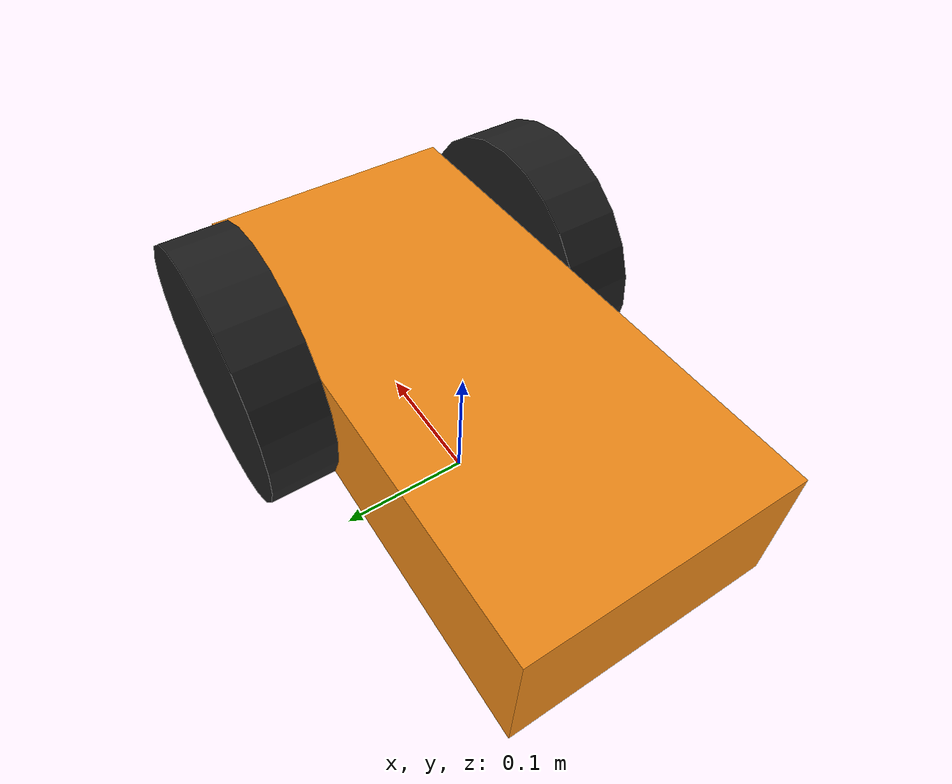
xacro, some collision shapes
<?xml version="1.0" ?>
<!--
 This is a standalone URDF model of 2WD smart car robot
 -->

<robot name="robot" xmlns:xacro="http://ros.org/wiki/xacro">

    <xacro:property name="PI" value="3.1415926535897931"/>

    <xacro:property name="chassisHeight" value="0.1"/>
    <xacro:property name="chassisLength" value="0.4"/>
    <xacro:property name="chassisWidth" value="0.2"/>
    <xacro:property name="chassisMass" value="50"/>

    <xacro:property name="casterRadius" value="0.05"/>
    <xacro:property name="casterMass" value="5"/>

    <xacro:property name="wheelWidth" value="0.05"/>
    <xacro:property name="wheelRadius" value="0.1"/>
    <xacro:property name="wheelPos" value="0.2"/>
    <xacro:property name="wheelMass" value="5"/>

    <xacro:include filename="$(find robot_gazebo)/urdf/robot_model.gazebo" />
    <xacro:include filename="$(find robot_gazebo)/urdf/macro.xacro" />

    <link name="footprint" />

    <joint name="base_joint" type="fixed">
      <parent link="footprint"/>
      <child link="chassis"/>
    </joint>

    <link name="chassis">
      <collision>
        <origin xyz="0 0 ${wheelRadius}" rpy="0 0 0"/>
        <geometry>
          <box size="${chassisLength} ${chassisWidth} ${chassisHeight}"/>
        </geometry>
      </collision>

      <visual>
        <origin xyz="-0.138 0.143 ${wheelRadius}" rpy="0 0 -${PI/2}"/>
        <geometry>
          <mesh filename="package://robot_gazebo/meshes/body/chasis.dae" scale="0.002 0.002 0.002"/>
        </geometry>
        <material name="orange"/>
      </visual>

      <inertial>
        <origin xyz="0 0 ${wheelRadius}" rpy="0 0 0"/>
        <mass value="${chassisMass}"/>
        <box_inertia m="${chassisMass}" x="${chassisLength}" y="${chassisWidth}" z="${chassisHeight}"/>
      </inertial>
    </link>

    <joint name="fixed" type="fixed">
      <parent link="chassis"/>
      <child link="caster_wheel"/>
    </joint>

    <link name="caster_wheel">

      <collision>
        <origin xyz="${casterRadius-chassisLength/2} 0 ${casterRadius-chassisHeight+wheelRadius}" rpy="0 0 0"/>
        <geometry>
          <sphere radius="${casterRadius}"/>
        </geometry>
      </collision>

      <visual>
        <origin xyz="${casterRadius-chassisLength/2+0.08} 0 ${casterRadius-chassisHeight+wheelRadius}" rpy="0 0 0"/>
        <geometry>
          <sphere radius="${casterRadius}"/>
        </geometry>
        <material name="red"/>
      </visual>

      <inertial>
        <origin xyz="${casterRadius-chassisLength/2} 0 ${casterRadius-chassisHeight+wheelRadius}" rpy="0 0 0"/>
        <mass value="${casterMass}"/>
        <sphere_inertia m="${casterMass}" r="${casterRadius}"/>
      </inertial>
    </link>

    <wheel lr="left" tY="-1"/>
    <wheel lr="right" tY="1"/>

</robot>

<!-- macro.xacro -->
<robot>

    <macro name="cylinder_inertia" params="m r h">
       <inertia  ixx="${m*(3*r*r+h*h)/12}" ixy = "0" ixz = "0"
                 iyy="${m*(3*r*r+h*h)/12}" iyz = "0"
                 izz="${m*r*r/2}" />
     </macro>

    <macro name="box_inertia" params="m x y z">
      <inertia  ixx="${m*(y*y+z*z)/12}" ixy = "0" ixz = "0"
                iyy="${m*(x*x+z*z)/12}" iyz = "0"
                izz="${m*(x*x+z*z)/12}" />
    </macro>

     <macro name="sphere_inertia" params="m r">
       <inertia  ixx="${2*m*r*r/5}" ixy = "0" ixz = "0"
                 iyy="${2*m*r*r/5}" iyz = "0"
                 izz="${2*m*r*r/5}" />
     </macro>

    <macro name="wheel" params="lr tY">

    <link name="${lr}_wheel">
     <collision>
       <origin xyz="0 0 0" rpy="0 ${PI/2} ${PI/2}" />
       <geometry>
        <cylinder length="${wheelWidth}" radius="${wheelRadius}"/>
       </geometry>
     </collision>

     <visual>
       <origin xyz="0 0 0" rpy="0 ${PI/2} ${PI/2}" />
       <geometry>
        <cylinder length="${wheelWidth}" radius="${wheelRadius}"/>
       </geometry>
       <material name="black"/>
     </visual>

     <inertial>
       <origin xyz="0 0 0" rpy="0 ${PI/2} ${PI/2}" />
       <mass value="${wheelMass}"/>
       <cylinder_inertia m="${wheelMass}" r="${wheelRadius}" h="${wheelWidth}"/>
     </inertial>
    </link>

     <gazebo reference="${lr}_wheel">
       <mu1 value="1.0"/>
       <mu2 value="1.0"/>
       <kp  value="10000000.0" />
       <kd  value="1.0" />
       <fdir1 value="1 0 0"/>
     </gazebo>

    <joint name="${lr}_wheel_hinge" type="continuous">
       <parent link="chassis"/>
       <child link="${lr}_wheel"/>
       <origin xyz="${+wheelPos-chassisLength/4} ${tY*wheelWidth/2+tY*chassisWidth/2} ${wheelRadius}" rpy="0 0 0" />
       <axis xyz="0 1 0" rpy="0 0 0" />
       <limit effort="10" velocity="10"/>
       <joint_properties damping="0.0" friction="0.0"/>
     </joint>

     <transmission name="${lr}_trans">
       <type>transmission_interface/SimpleTransmission</type>
       <joint name="${lr}_wheel_hinge">
         <hardwareInterface>EffortJointInterface</hardwareInterface>
       </joint>
       <actuator name="${lr}Motor">
         <hardwareInterface>EffortJointInterface</hardwareInterface>
         <mechanicalReduction>10</mechanicalReduction>
       </actuator>
     </transmission>

    </macro>

</robot>
